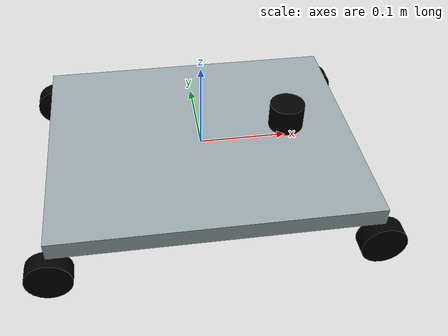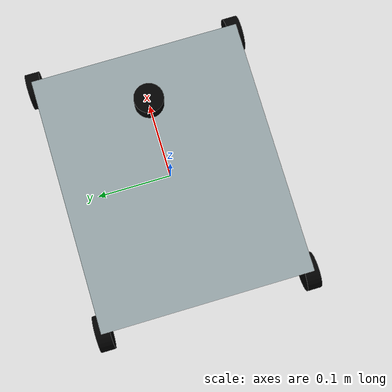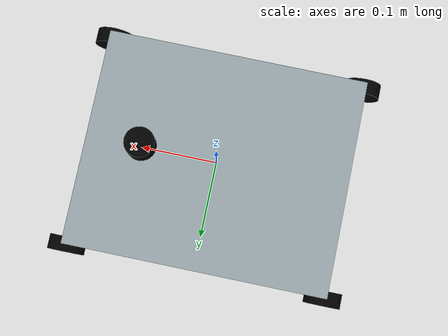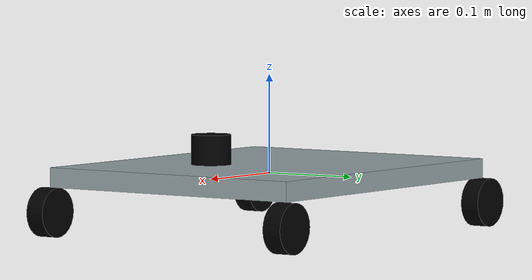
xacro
<robot name="small_car" xmlns:xacro="http://www.ros.org/wiki/xacro">
    <material name="green">
        <color rgba="0 0.5 0.2 1"/>
    </material>
    <material name="black">
        <color rgba="0 0 0 1"/>
    </material>
    <material name="white">
        <color rgba="1 1 1 1"/>
    </material>
    <material name="grey">
        <color rgba="0.5843137254901961 0.6392156862745098 0.6509803921568628 1"/>
    </material>

    <xacro:property name="depth" value="0.35" />
    <xacro:property name="width" value="0.29" />
    <xacro:property name="hight" value="0.02" />
    <xacro:property name="mass_body" value="0.5" />

    <link name="base_link">
        <visual>
            <geometry>
                <box size="${depth} ${width} ${hight}"/>
            </geometry>
            <origin rpy="0 0 0" xyz="0 0 0"/>
            <material name="grey"/>
        </visual>
        <collision>
            <geometry>
                <box size="${depth} ${width} ${hight}"/>
            </geometry>
            <origin rpy="0 0 0" xyz="0 0 0"/>
        </collision>
        <inertial>
            <mass value="${mass_body}"/>
            <!-- box inertia -->
            <inertia ixx="${1/12 * mass_body * (hight*hight + depth*depth)}" ixy="0.0" ixz="0.0" iyy="${1/12 * mass_body * (width*width + hight*hight)}" iyz="0.0" izz="${1/12 * mass_body * (width*width + depth*depth)}"/>
        </inertial>
    </link>

    <xacro:property name="mass_wheel" value="0.1" />
    <xacro:property name="length" value="0.02" />
    <xacro:property name="radius" value="0.025" />

    <xacro:macro name="front_steering_wheel" params="prefix x_sign y_sign">
        <link name="${prefix}_front_steering_wheel">
            <inertial>
                <mass value="${mass_wheel}"/>
                <inertia ixx="${1/12 * mass_wheel * (3*radius*radius + length*length)}" ixy="0.0" ixz="0.0" iyy="${1/12 * mass_wheel * (3*radius*radius + length*length)}" iyz="0.0" izz="${1/2 * mass_wheel * radius*radius}"/>
            </inertial>
        </link>
        <!-- steering wheel -->
        <joint name="${prefix}_front_steering_wheel_joint" type="revolute">
            <axis rpy="0 0 0" xyz="0 0 1"/>
            <parent link="base_link"/>
            <child link="${prefix}_front_steering_wheel"/>
            <origin rpy="0 0 0" xyz="${x_sign * depth/2} ${y_sign * width/2} -${radius + hight/2}"/>
        </joint>
    </xacro:macro>

    <xacro:front_steering_wheel prefix="right" x_sign="1" y_sign="-1"/>
    <xacro:front_steering_wheel prefix="left" x_sign="1" y_sign="1"/>

    <xacro:macro name="forward_wheel" params="prefix parent x_sign y_sign adjust">
        <link name="${prefix}_forward_wheel">
            <visual>
                <origin rpy="${pi/2} 0 0" xyz="0 0 0"/>
                <geometry>
                    <cylinder length="${length}" radius="${radius}"/>
                </geometry>
                <material name="black"/>
            </visual>
            <collision>
                <origin rpy="${pi/2} 0 0" xyz="0 0 0"/>
                <geometry>
                    <cylinder length="${length}" radius="${radius}"/>
                </geometry>
            </collision>
            <inertial>
                <mass value="${mass_wheel}"/>
                <!-- cylinder inertia -->
                <inertia ixx="${1/12 * mass_wheel * (3*radius*radius + length*length)}" ixy="0.0" ixz="0.0" iyy="${1/12 * mass_wheel * (3*radius*radius + length*length)}" iyz="0.0" izz="${1/2 * mass_wheel * radius*radius}"/>
            </inertial>
        </link>
        <!-- move forward wheel -->
        <joint name="${prefix}_forward_wheel_joint" type="continuous">
            <axis rpy="0 0 0" xyz="0 1 0"/>
            <parent link="${parent}"/>
            <child link="${prefix}_forward_wheel"/>
            <origin rpy="0 0 0" xyz="${(x_sign * depth/2) * adjust} ${(y_sign * width/2) * adjust} -${(radius + hight/2) * adjust}"/>
        </joint>
    </xacro:macro>

    <xacro:forward_wheel prefix="right_front" parent="right_front_steering_wheel" x_sign="1" y_sign="-1" adjust="0"/>
    <xacro:forward_wheel prefix="left_front" parent="left_front_steering_wheel" x_sign="1" y_sign="1" adjust="0"/>
    <xacro:forward_wheel prefix="right_back" parent="base_link" x_sign="-1" y_sign="-1" adjust="1"/>
    <xacro:forward_wheel prefix="left_back" parent="base_link" x_sign="-1" y_sign="1" adjust="1"/>

    <link name="lidar">
        <visual>
            <origin rpy="0 0 0" xyz="0 0 0"/>
            <geometry>
                <cylinder length="0.03" radius="0.02"/>
            </geometry>
            <material name="black"/>
        </visual>
        <collision>
            <origin rpy="0 0 0" xyz="0 0 0"/>
            <geometry>
                <cylinder length="0.03" radius="0.02"/>
            </geometry>
        </collision>
        <inertial>
            <mass value="0.2"/>
            <origin xyz="0 0 0"/>
        <inertia ixx="0.001" ixy="0.0" ixz="0.0" iyy="0.001" iyz="0.0" izz="0.001"/>
        </inertial>
    </link>
    <joint name="scan_joint" type="fixed">
        <parent link="base_link"/>
        <child link="lidar"/>
        <origin rpy="0 0 0" xyz="0.1 0 0.03"/>
    </joint>

</robot>
